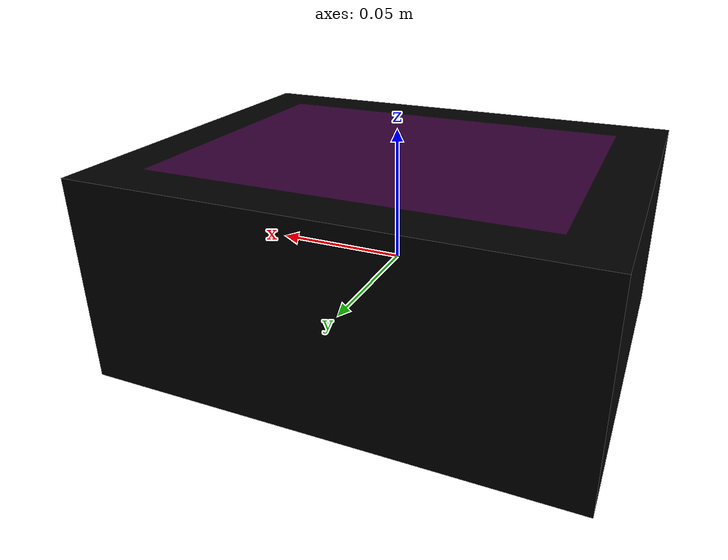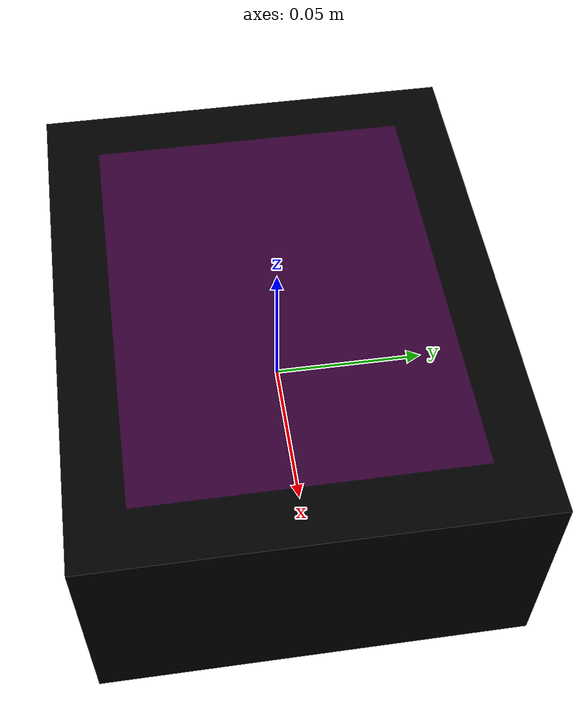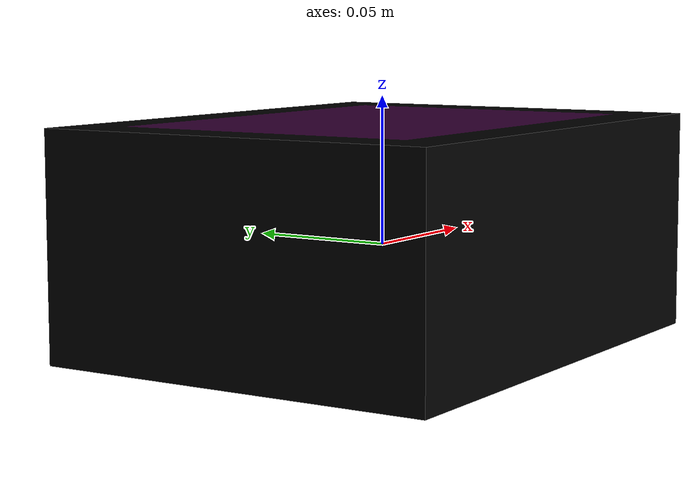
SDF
<?xml version="1.0"?>
<sdf version="1.6">
  <model name="ore_package">
    <static>false</static>
    <link name="ore_package_link">

      <inertial>
        <pose>0 0 0.003802 0 0 0</pose>
        <mass>0.3000</mass>
        <inertia>
          <ixx>0.00063306</ixx><ixy>0</ixy><ixz>0</ixz>
          <iyy>0.00093548</iyy><iyz>0</iyz>
          <izz>0.00127822</izz>
        </inertia>
      </inertial>

      <visual name="visual">
        <geometry>
          <mesh><uri>model://ore_package/meshes/ore_package.dae</uri></mesh>
        </geometry>
      </visual>

      <collision name="collision">
        <pose>0 0 0.003802 0 0 0</pose>
        <geometry>
          <box><size>0.1778 0.1397 0.0762</size></box>
        </geometry>
        <surface>
          <friction>
            <ode><mu>1.0</mu><mu2>1.0</mu2></ode>
          </friction>
        </surface>
      </collision>

    </link>
  </model>
</sdf>
